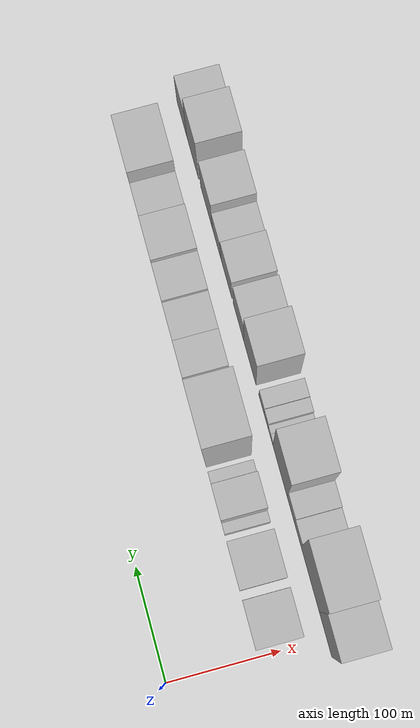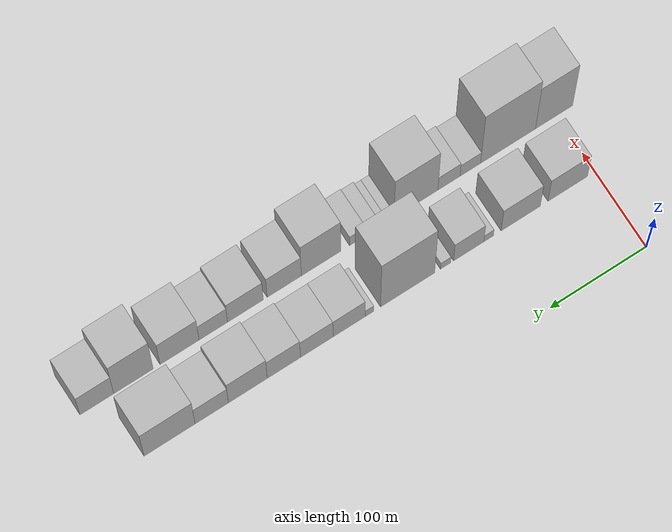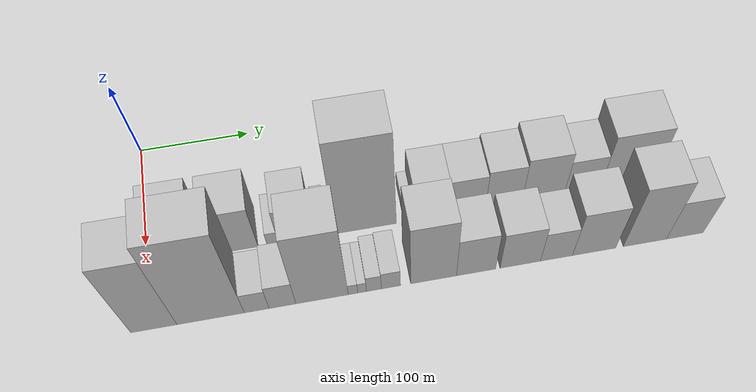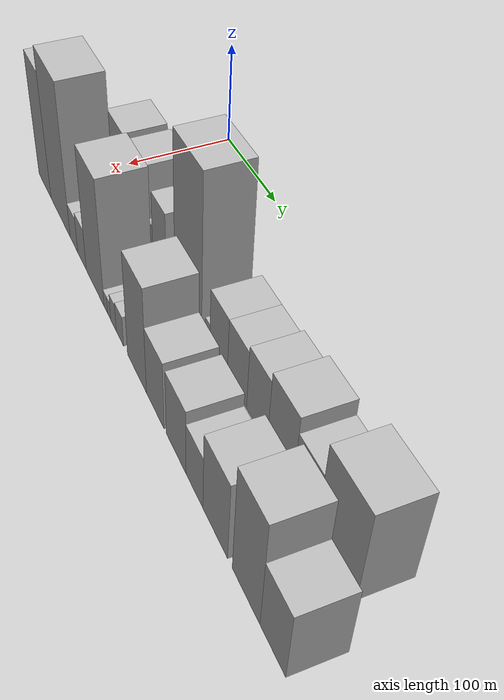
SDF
<sdf version="1.6">
 <world name="default">
  <model name="building_13">
   <static>1</static>
   <pose>100.0000 28.6421 0 0.000000 0.000000 0.000000</pose>
   <link name="link">
    <pose>0 0 34.50 0 0 0</pose>
    <collision name="collision"><geometry><box><size>40.0000 40.8430 69.0000</size></box></geometry></collision>
    <visual name="visual">
     <cast_shadows>0</cast_shadows>
     <geometry><box><size>40.0000 40.8430 69.0000</size></box></geometry>
     <material>
      <script>
       <uri>model://HANNAS_wall/materials/scripts</uri>
       <uri>model://HANNAS_wall/materials/textures</uri>
       <name>vrc/HANNAS_wall</name>
      </script>
     </material>
    </visual>
   </link>
  </model>
  <model name="building_14">
   <static>1</static>
   <pose>100.0000 77.3042 0 0.000000 0.000000 0.000000</pose>
   <link name="link">
    <pose>0 0 34.50 0 0 0</pose>
    <collision name="collision"><geometry><box><size>40.0000 40.4811 69.0000</size></box></geometry></collision>
    <visual name="visual">
     <cast_shadows>0</cast_shadows>
     <geometry><box><size>40.0000 40.4811 69.0000</size></box></geometry>
     <material>
      <script>
       <uri>model://HANNAS_wall/materials/scripts</uri>
       <uri>model://HANNAS_wall/materials/textures</uri>
       <name>vrc/HANNAS_wall</name>
      </script>
     </material>
    </visual>
   </link>
  </model>
  <model name="building_15">
   <static>1</static>
   <pose>100.0000 110.5160 0 0.000000 0.000000 0.000000</pose>
   <link name="link">
    <pose>0 0 10.50 0 0 0</pose>
    <collision name="collision"><geometry><box><size>40.0000 9.9425 21.0000</size></box></geometry></collision>
    <visual name="visual">
     <cast_shadows>0</cast_shadows>
     <geometry><box><size>40.0000 9.9425 21.0000</size></box></geometry>
     <material>
      <script>
       <uri>model://HANNAS_wall/materials/scripts</uri>
       <uri>model://HANNAS_wall/materials/textures</uri>
       <name>vrc/HANNAS_wall</name>
      </script>
     </material>
    </visual>
   </link>
  </model>
  <model name="building_16">
   <static>1</static>
   <pose>100.0000 131.0687 0 0.000000 0.000000 0.000000</pose>
   <link name="link">
    <pose>0 0 28.50 0 0 0</pose>
    <collision name="collision"><geometry><box><size>40.0000 31.1630 57.0000</size></box></geometry></collision>
    <visual name="visual">
     <cast_shadows>0</cast_shadows>
     <geometry><box><size>40.0000 31.1630 57.0000</size></box></geometry>
     <material>
      <script>
       <uri>model://HANNAS_wall/materials/scripts</uri>
       <uri>model://HANNAS_wall/materials/textures</uri>
       <name>vrc/HANNAS_wall</name>
      </script>
     </material>
    </visual>
   </link>
  </model>
  <model name="building_17">
   <static>1</static>
   <pose>100.0000 154.8669 0 0.000000 0.000000 0.000000</pose>
   <link name="link">
    <pose>0 0 10.50 0 0 0</pose>
    <collision name="collision"><geometry><box><size>40.0000 10.4335 21.0000</size></box></geometry></collision>
    <visual name="visual">
     <cast_shadows>0</cast_shadows>
     <geometry><box><size>40.0000 10.4335 21.0000</size></box></geometry>
     <material>
      <script>
       <uri>model://HANNAS_wall/materials/scripts</uri>
       <uri>model://HANNAS_wall/materials/textures</uri>
       <name>vrc/HANNAS_wall</name>
      </script>
     </material>
    </visual>
   </link>
  </model>
  <model name="building_18">
   <static>1</static>
   <pose>100.0000 193.8247 0 0.000000 0.000000 0.000000</pose>
   <link name="link">
    <pose>0 0 75.00 0 0 0</pose>
    <collision name="collision"><geometry><box><size>40.0000 55.4822 150.0000</size></box></geometry></collision>
    <visual name="visual">
     <cast_shadows>0</cast_shadows>
     <geometry><box><size>40.0000 55.4822 150.0000</size></box></geometry>
     <material>
      <script>
       <uri>model://HANNAS_wall/materials/scripts</uri>
       <uri>model://HANNAS_wall/materials/textures</uri>
       <name>vrc/HANNAS_wall</name>
      </script>
     </material>
    </visual>
   </link>
  </model>
  <model name="building_19">
   <static>1</static>
   <pose>100.0000 232.9979 0 0.000000 0.000000 0.000000</pose>
   <link name="link">
    <pose>0 0 10.50 0 0 0</pose>
    <collision name="collision"><geometry><box><size>40.0000 8.8642 21.0000</size></box></geometry></collision>
    <visual name="visual">
     <cast_shadows>0</cast_shadows>
     <geometry><box><size>40.0000 8.8642 21.0000</size></box></geometry>
     <material>
      <script>
       <uri>model://HANNAS_wall/materials/scripts</uri>
       <uri>model://HANNAS_wall/materials/textures</uri>
       <name>vrc/HANNAS_wall</name>
      </script>
     </material>
    </visual>
   </link>
  </model>
  <model name="building_20">
   <static>1</static>
   <pose>100.0000 253.7169 0 0.000000 0.000000 0.000000</pose>
   <link name="link">
    <pose>0 0 28.50 0 0 0</pose>
    <collision name="collision"><geometry><box><size>40.0000 32.5739 57.0000</size></box></geometry></collision>
    <visual name="visual">
     <cast_shadows>0</cast_shadows>
     <geometry><box><size>40.0000 32.5739 57.0000</size></box></geometry>
     <material>
      <script>
       <uri>model://HANNAS_wall/materials/scripts</uri>
       <uri>model://HANNAS_wall/materials/textures</uri>
       <name>vrc/HANNAS_wall</name>
      </script>
     </material>
    </visual>
   </link>
  </model>
  <model name="building_21">
   <static>1</static>
   <pose>100.0000 286.6877 0 0.000000 0.000000 0.000000</pose>
   <link name="link">
    <pose>0 0 28.50 0 0 0</pose>
    <collision name="collision"><geometry><box><size>40.0000 33.3677 57.0000</size></box></geometry></collision>
    <visual name="visual">
     <cast_shadows>0</cast_shadows>
     <geometry><box><size>40.0000 33.3677 57.0000</size></box></geometry>
     <material>
      <script>
       <uri>model://HANNAS_wall/materials/scripts</uri>
       <uri>model://HANNAS_wall/materials/textures</uri>
       <name>vrc/HANNAS_wall</name>
      </script>
     </material>
    </visual>
   </link>
  </model>
  <model name="building_22">
   <static>1</static>
   <pose>100.0000 320.2430 0 0.000000 0.000000 0.000000</pose>
   <link name="link">
    <pose>0 0 31.50 0 0 0</pose>
    <collision name="collision"><geometry><box><size>40.0000 33.7429 63.0000</size></box></geometry></collision>
    <visual name="visual">
     <cast_shadows>0</cast_shadows>
     <geometry><box><size>40.0000 33.7429 63.0000</size></box></geometry>
     <material>
      <script>
       <uri>model://HANNAS_wall/materials/scripts</uri>
       <uri>model://HANNAS_wall/materials/textures</uri>
       <name>vrc/HANNAS_wall</name>
      </script>
     </material>
    </visual>
   </link>
  </model>
  <model name="building_23">
   <static>1</static>
   <pose>100.0000 356.7612 0 0.000000 0.000000 0.000000</pose>
   <link name="link">
    <pose>0 0 36.00 0 0 0</pose>
    <collision name="collision"><geometry><box><size>40.0000 39.2936 72.0000</size></box></geometry></collision>
    <visual name="visual">
     <cast_shadows>0</cast_shadows>
     <geometry><box><size>40.0000 39.2936 72.0000</size></box></geometry>
     <material>
      <script>
       <uri>model://HANNAS_wall/materials/scripts</uri>
       <uri>model://HANNAS_wall/materials/textures</uri>
       <name>vrc/HANNAS_wall</name>
      </script>
     </material>
    </visual>
   </link>
  </model>
  <model name="building_24">
   <static>1</static>
   <pose>100.0000 393.3028 0 0.000000 0.000000 0.000000</pose>
   <link name="link">
    <pose>0 0 28.50 0 0 0</pose>
    <collision name="collision"><geometry><box><size>40.0000 33.7896 57.0000</size></box></geometry></collision>
    <visual name="visual">
     <cast_shadows>0</cast_shadows>
     <geometry><box><size>40.0000 33.7896 57.0000</size></box></geometry>
     <material>
      <script>
       <uri>model://HANNAS_wall/materials/scripts</uri>
       <uri>model://HANNAS_wall/materials/textures</uri>
       <name>vrc/HANNAS_wall</name>
      </script>
     </material>
    </visual>
   </link>
  </model>
  <model name="building_25">
   <static>1</static>
   <pose>100.0000 435.9201 0 0.000000 0.000000 0.000000</pose>
   <link name="link">
    <pose>0 0 43.50 0 0 0</pose>
    <collision name="collision"><geometry><box><size>40.0000 51.4449 87.0000</size></box></geometry></collision>
    <visual name="visual">
     <cast_shadows>0</cast_shadows>
     <geometry><box><size>40.0000 51.4449 87.0000</size></box></geometry>
     <material>
      <script>
       <uri>model://HANNAS_wall/materials/scripts</uri>
       <uri>model://HANNAS_wall/materials/textures</uri>
       <name>vrc/HANNAS_wall</name>
      </script>
     </material>
    </visual>
   </link>
  </model>
  <model name="building_41">
   <static>1</static>
   <pose>160.0000 3.1176 0 0.000000 0.000000 0.000000</pose>
   <link name="link">
    <pose>0 0 63.00 0 0 0</pose>
    <collision name="collision"><geometry><box><size>40.0000 38.6812 126.0000</size></box></geometry></collision>
    <visual name="visual">
     <cast_shadows>0</cast_shadows>
     <geometry><box><size>40.0000 38.6812 126.0000</size></box></geometry>
     <material>
      <script>
       <uri>model://HANNAS_wall/materials/scripts</uri>
       <uri>model://HANNAS_wall/materials/textures</uri>
       <name>vrc/HANNAS_wall</name>
      </script>
     </material>
    </visual>
   </link>
  </model>
  <model name="building_42">
   <static>1</static>
   <pose>160.0000 50.9717 0 0.000000 0.000000 0.000000</pose>
   <link name="link">
    <pose>0 0 75.00 0 0 0</pose>
    <collision name="collision"><geometry><box><size>40.0000 57.0269 150.0000</size></box></geometry></collision>
    <visual name="visual">
     <cast_shadows>0</cast_shadows>
     <geometry><box><size>40.0000 57.0269 150.0000</size></box></geometry>
     <material>
      <script>
       <uri>model://HANNAS_wall/materials/scripts</uri>
       <uri>model://HANNAS_wall/materials/textures</uri>
       <name>vrc/HANNAS_wall</name>
      </script>
     </material>
    </visual>
   </link>
  </model>
  <model name="building_43">
   <static>1</static>
   <pose>160.0000 90.0743 0 0.000000 0.000000 0.000000</pose>
   <link name="link">
    <pose>0 0 18.00 0 0 0</pose>
    <collision name="collision"><geometry><box><size>40.0000 21.1782 36.0000</size></box></geometry></collision>
    <visual name="visual">
     <cast_shadows>0</cast_shadows>
     <geometry><box><size>40.0000 21.1782 36.0000</size></box></geometry>
     <material>
      <script>
       <uri>model://HANNAS_wall/materials/scripts</uri>
       <uri>model://HANNAS_wall/materials/textures</uri>
       <name>vrc/HANNAS_wall</name>
      </script>
     </material>
    </visual>
   </link>
  </model>
  <model name="building_44">
   <static>1</static>
   <pose>160.0000 112.1305 0 0.000000 0.000000 0.000000</pose>
   <link name="link">
    <pose>0 0 21.00 0 0 0</pose>
    <collision name="collision"><geometry><box><size>40.0000 22.9343 42.0000</size></box></geometry></collision>
    <visual name="visual">
     <cast_shadows>0</cast_shadows>
     <geometry><box><size>40.0000 22.9343 42.0000</size></box></geometry>
     <material>
      <script>
       <uri>model://HANNAS_wall/materials/scripts</uri>
       <uri>model://HANNAS_wall/materials/textures</uri>
       <name>vrc/HANNAS_wall</name>
      </script>
     </material>
    </visual>
   </link>
  </model>
  <model name="building_45">
   <static>1</static>
   <pose>160.0000 146.2553 0 0.000000 0.000000 0.000000</pose>
   <link name="link">
    <pose>0 0 61.50 0 0 0</pose>
    <collision name="collision"><geometry><box><size>40.0000 45.3153 123.0000</size></box></geometry></collision>
    <visual name="visual">
     <cast_shadows>0</cast_shadows>
     <geometry><box><size>40.0000 45.3153 123.0000</size></box></geometry>
     <material>
      <script>
       <uri>model://HANNAS_wall/materials/scripts</uri>
       <uri>model://HANNAS_wall/materials/textures</uri>
       <name>vrc/HANNAS_wall</name>
      </script>
     </material>
    </visual>
   </link>
  </model>
  <model name="building_46">
   <static>1</static>
   <pose>160.0000 173.0358 0 0.000000 0.000000 0.000000</pose>
   <link name="link">
    <pose>0 0 9.00 0 0 0</pose>
    <collision name="collision"><geometry><box><size>40.0000 8.2457 18.0000</size></box></geometry></collision>
    <visual name="visual">
     <cast_shadows>0</cast_shadows>
     <geometry><box><size>40.0000 8.2457 18.0000</size></box></geometry>
     <material>
      <script>
       <uri>model://HANNAS_wall/materials/scripts</uri>
       <uri>model://HANNAS_wall/materials/textures</uri>
       <name>vrc/HANNAS_wall</name>
      </script>
     </material>
    </visual>
   </link>
  </model>
  <model name="building_47">
   <static>1</static>
   <pose>160.0000 180.9803 0 0.000000 0.000000 0.000000</pose>
   <link name="link">
    <pose>0 0 9.00 0 0 0</pose>
    <collision name="collision"><geometry><box><size>40.0000 7.6434 18.0000</size></box></geometry></collision>
    <visual name="visual">
     <cast_shadows>0</cast_shadows>
     <geometry><box><size>40.0000 7.6434 18.0000</size></box></geometry>
     <material>
      <script>
       <uri>model://HANNAS_wall/materials/scripts</uri>
       <uri>model://HANNAS_wall/materials/textures</uri>
       <name>vrc/HANNAS_wall</name>
      </script>
     </material>
    </visual>
   </link>
  </model>
  <model name="building_48">
   <static>1</static>
   <pose>160.0000 191.3083 0 0.000000 0.000000 0.000000</pose>
   <link name="link">
    <pose>0 0 13.50 0 0 0</pose>
    <collision name="collision"><geometry><box><size>40.0000 13.0125 27.0000</size></box></geometry></collision>
    <visual name="visual">
     <cast_shadows>0</cast_shadows>
     <geometry><box><size>40.0000 13.0125 27.0000</size></box></geometry>
     <material>
      <script>
       <uri>model://HANNAS_wall/materials/scripts</uri>
       <uri>model://HANNAS_wall/materials/textures</uri>
       <name>vrc/HANNAS_wall</name>
      </script>
     </material>
    </visual>
   </link>
  </model>
  <model name="building_49">
   <static>1</static>
   <pose>160.0000 206.1344 0 0.000000 0.000000 0.000000</pose>
   <link name="link">
    <pose>0 0 15.00 0 0 0</pose>
    <collision name="collision"><geometry><box><size>40.0000 16.6398 30.0000</size></box></geometry></collision>
    <visual name="visual">
     <cast_shadows>0</cast_shadows>
     <geometry><box><size>40.0000 16.6398 30.0000</size></box></geometry>
     <material>
      <script>
       <uri>model://HANNAS_wall/materials/scripts</uri>
       <uri>model://HANNAS_wall/materials/textures</uri>
       <name>vrc/HANNAS_wall</name>
      </script>
     </material>
    </visual>
   </link>
  </model>
  <model name="building_50">
   <static>1</static>
   <pose>160.0000 243.6812 0 0.000000 0.000000 0.000000</pose>
   <link name="link">
    <pose>0 0 51.00 0 0 0</pose>
    <collision name="collision"><geometry><box><size>40.0000 40.4539 102.0000</size></box></geometry></collision>
    <visual name="visual">
     <cast_shadows>0</cast_shadows>
     <geometry><box><size>40.0000 40.4539 102.0000</size></box></geometry>
     <material>
      <script>
       <uri>model://HANNAS_wall/materials/scripts</uri>
       <uri>model://HANNAS_wall/materials/textures</uri>
       <name>vrc/HANNAS_wall</name>
      </script>
     </material>
    </visual>
   </link>
  </model>
  <model name="building_51">
   <static>1</static>
   <pose>160.0000 281.3382 0 0.000000 0.000000 0.000000</pose>
   <link name="link">
    <pose>0 0 33.00 0 0 0</pose>
    <collision name="collision"><geometry><box><size>40.0000 34.8599 66.0000</size></box></geometry></collision>
    <visual name="visual">
     <cast_shadows>0</cast_shadows>
     <geometry><box><size>40.0000 34.8599 66.0000</size></box></geometry>
     <material>
      <script>
       <uri>model://HANNAS_wall/materials/scripts</uri>
       <uri>model://HANNAS_wall/materials/textures</uri>
       <name>vrc/HANNAS_wall</name>
      </script>
     </material>
    </visual>
   </link>
  </model>
  <model name="building_52">
   <static>1</static>
   <pose>160.0000 320.9384 0 0.000000 0.000000 0.000000</pose>
   <link name="link">
    <pose>0 0 31.50 0 0 0</pose>
    <collision name="collision"><geometry><box><size>40.0000 36.3406 63.0000</size></box></geometry></collision>
    <visual name="visual">
     <cast_shadows>0</cast_shadows>
     <geometry><box><size>40.0000 36.3406 63.0000</size></box></geometry>
     <material>
      <script>
       <uri>model://HANNAS_wall/materials/scripts</uri>
       <uri>model://HANNAS_wall/materials/textures</uri>
       <name>vrc/HANNAS_wall</name>
      </script>
     </material>
    </visual>
   </link>
  </model>
  <model name="building_53">
   <static>1</static>
   <pose>160.0000 353.6184 0 0.000000 0.000000 0.000000</pose>
   <link name="link">
    <pose>0 0 25.50 0 0 0</pose>
    <collision name="collision"><geometry><box><size>40.0000 29.0194 51.0000</size></box></geometry></collision>
    <visual name="visual">
     <cast_shadows>0</cast_shadows>
     <geometry><box><size>40.0000 29.0194 51.0000</size></box></geometry>
     <material>
      <script>
       <uri>model://HANNAS_wall/materials/scripts</uri>
       <uri>model://HANNAS_wall/materials/textures</uri>
       <name>vrc/HANNAS_wall</name>
      </script>
     </material>
    </visual>
   </link>
  </model>
  <model name="building_54">
   <static>1</static>
   <pose>160.0000 387.8521 0 0.000000 0.000000 0.000000</pose>
   <link name="link">
    <pose>0 0 37.50 0 0 0</pose>
    <collision name="collision"><geometry><box><size>40.0000 39.4479 75.0000</size></box></geometry></collision>
    <visual name="visual">
     <cast_shadows>0</cast_shadows>
     <geometry><box><size>40.0000 39.4479 75.0000</size></box></geometry>
     <material>
      <script>
       <uri>model://HANNAS_wall/materials/scripts</uri>
       <uri>model://HANNAS_wall/materials/textures</uri>
       <name>vrc/HANNAS_wall</name>
      </script>
     </material>
    </visual>
   </link>
  </model>
  <model name="building_55">
   <static>1</static>
   <pose>160.0000 434.4731 0 0.000000 0.000000 0.000000</pose>
   <link name="link">
    <pose>0 0 51.00 0 0 0</pose>
    <collision name="collision"><geometry><box><size>40.0000 39.7941 102.0000</size></box></geometry></collision>
    <visual name="visual">
     <cast_shadows>0</cast_shadows>
     <geometry><box><size>40.0000 39.7941 102.0000</size></box></geometry>
     <material>
      <script>
       <uri>model://HANNAS_wall/materials/scripts</uri>
       <uri>model://HANNAS_wall/materials/textures</uri>
       <name>vrc/HANNAS_wall</name>
      </script>
     </material>
    </visual>
   </link>
  </model>
  <model name="building_56">
   <static>1</static>
   <pose>160.0000 471.4250 0 0.000000 0.000000 0.000000</pose>
   <link name="link">
    <pose>0 0 33.00 0 0 0</pose>
    <collision name="collision"><geometry><box><size>40.0000 34.1095 66.0000</size></box></geometry></collision>
    <visual name="visual">
     <cast_shadows>0</cast_shadows>
     <geometry><box><size>40.0000 34.1095 66.0000</size></box></geometry>
     <material>
      <script>
       <uri>model://HANNAS_wall/materials/scripts</uri>
       <uri>model://HANNAS_wall/materials/textures</uri>
       <name>vrc/HANNAS_wall</name>
      </script>
     </material>
    </visual>
   </link>
  </model>
 </world>
</sdf>
